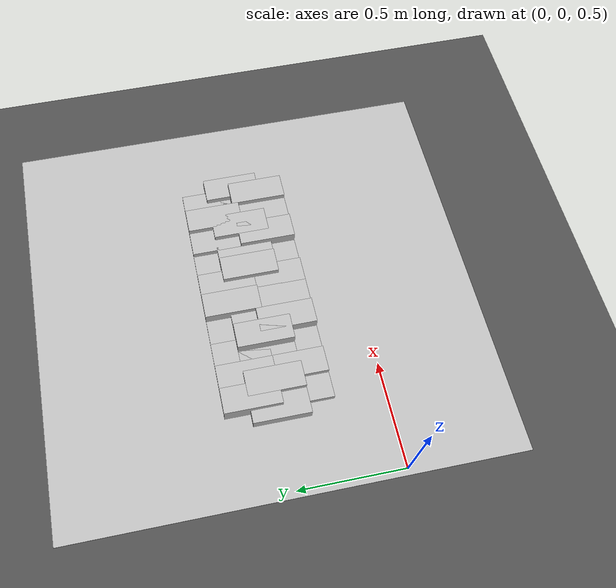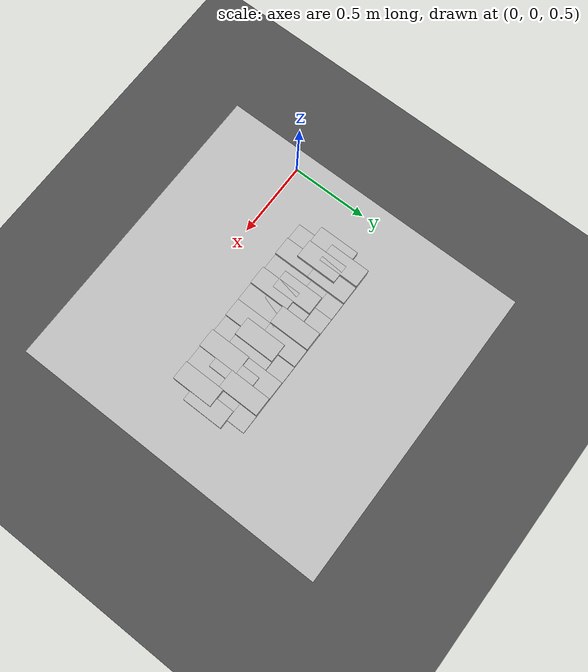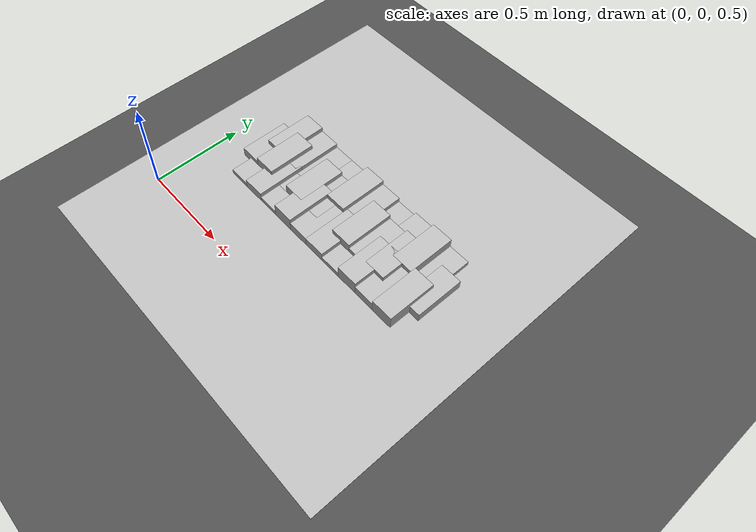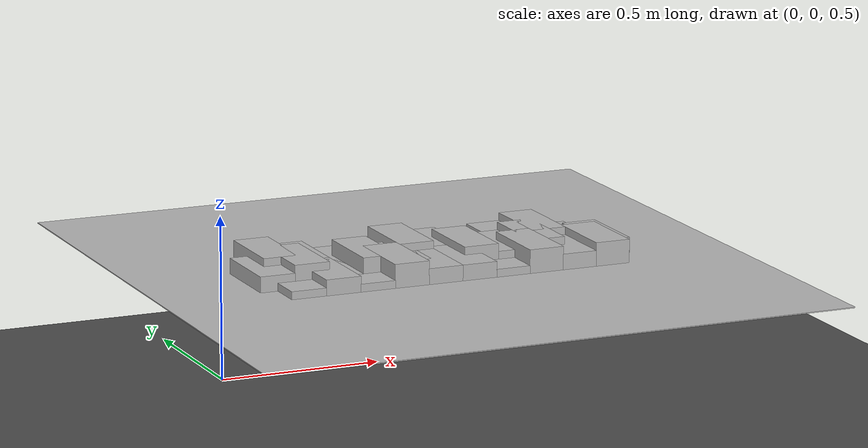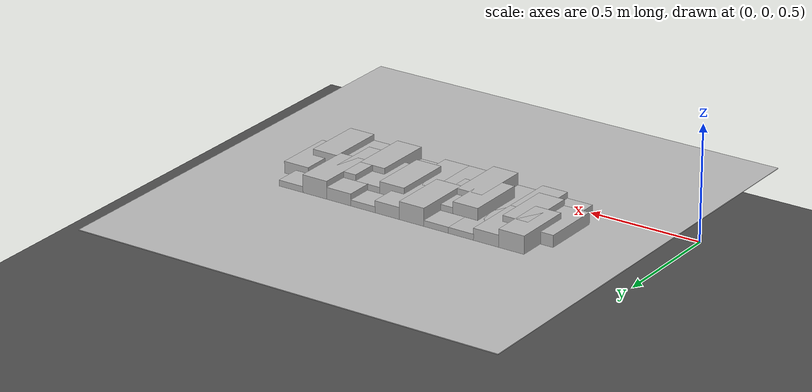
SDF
<sdf version="1.6">
 <world name="default">
  <model name="ground_plane">
   <static>1</static>
   <link name="link">
    <collision name="collision">
     <geometry><plane><normal>0 0 1</normal><size>100 100</size></plane></geometry>
     <surface><friction><ode><mu>100</mu><mu2>50</mu2></ode></friction></surface>
    </collision>
    <visual name="visual">
     <cast_shadows>0</cast_shadows>
     <geometry><plane><normal>0 0 1</normal><size>100 100</size></plane></geometry>
     <material>
      <script><uri>file://media/materials/scripts/gazebo.material</uri><name>Gazebo/Grey</name></script>
     </material>
    </visual>
   </link>
  </model>
  <model name="frc2016_roughterrain_0">
   <link name="link_clone_15">
    <pose>1.00321 0.4785 -0.073164 0 -0 0</pose>
    <inertial>
     <inertia><ixx>nan</ixx><ixy>0</ixy><ixz>0</ixz><iyy>nan</iyy><iyz>0</iyz><izz>nan</izz></inertia>
     <mass>0</mass>
    </inertial>
    <visual name="row1_block4_sm">
     <pose>0.17145 0.1143 0.09698 0 -0 0</pose>
     <geometry><box><size>0.115452 0.257474 0.0254</size></box></geometry>
     <material><shader type="pixel"/></material>
    </visual>
    <visual name="row1_block2_lg">
     <pose>0.40005 0.1143 0.12238 0 -0 0</pose>
     <geometry><box><size>0.115452 0.257474 0.0762</size></box></geometry>
     <material><shader type="pixel"/></material>
    </visual>
    <visual name="row1_block3_md">
     <pose>0.28575 0.1143 0.10968 0 -0 0</pose>
     <geometry><box><size>0.115452 0.257474 0.0508</size></box></geometry>
     <material><shader type="pixel"/></material>
    </visual>
    <visual name="row1_block5_md">
     <pose>0.05715 0.1143 0.10968 0 -0 0</pose>
     <geometry><box><size>0.115452 0.257474 0.0508</size></box></geometry>
     <material><shader type="pixel"/></material>
    </visual>
    <visual name="platform">
     <pose>0 0 0.08269 0 -0 0</pose>
     <geometry><box><size>1.91826 2.01688 0.003175</size></box></geometry>
     <material><shader type="pixel"/></material>
    </visual>
    <visual name="row1_block1_sm">
     <pose>0.51435 0.1143 0.09698 0 -0 0</pose>
     <geometry><box><size>0.115452 0.257474 0.0254</size></box></geometry>
     <material><shader type="pixel"/></material>
    </visual>
    <visual name="row1_block6_lg">
     <pose>-0.05715 0.1143 0.12238 0 -0 0</pose>
     <geometry><box><size>0.115452 0.257474 0.0762</size></box></geometry>
     <material><shader type="pixel"/></material>
    </visual>
    <visual name="row1_block7_sm">
     <pose>-0.17145 0.1143 0.09698 0 -0 0</pose>
     <geometry><box><size>0.115452 0.257474 0.0254</size></box></geometry>
     <material><shader type="pixel"/></material>
    </visual>
    <visual name="row1_block8_sm">
     <pose>-0.28575 0.1143 0.09698 0 -0 0</pose>
     <geometry><box><size>0.115452 0.257474 0.0254</size></box></geometry>
     <material><shader type="pixel"/></material>
    </visual>
    <visual name="row1_block9_md">
     <pose>-0.40005 0.1143 0.10968 0 -0 0</pose>
     <geometry><box><size>0.115452 0.257474 0.0508</size></box></geometry>
     <material><shader type="pixel"/></material>
    </visual>
    <visual name="row1_block10_lg">
     <pose>-0.51435 0.1143 0.12238 0 -0 0</pose>
     <geometry><box><size>0.115452 0.257474 0.0762</size></box></geometry>
     <material><shader type="pixel"/></material>
    </visual>
    <visual name="row2_block1_md">
     <pose>0.5715 0 0.10968 0 -0 0</pose>
     <geometry><box><size>0.115452 0.257474 0.0508</size></box></geometry>
     <material><shader type="pixel"/></material>
    </visual>
    <visual name="row2_block2_sm">
     <pose>0.4572 0 0.09698 0 -0 0</pose>
     <geometry><box><size>0.115452 0.257474 0.0254</size></box></geometry>
     <material><shader type="pixel"/></material>
    </visual>
    <visual name="row2_block3_lg">
     <pose>0.3429 0 0.12238 0 -0 0</pose>
     <geometry><box><size>0.115452 0.257474 0.0762</size></box></geometry>
     <material><shader type="pixel"/></material>
    </visual>
    <visual name="row2_block4_md">
     <pose>0.2286 0 0.10968 0 -0 0</pose>
     <geometry><box><size>0.115452 0.257474 0.0508</size></box></geometry>
     <material><shader type="pixel"/></material>
    </visual>
    <visual name="row2_block5_lg">
     <pose>0.1143 0 0.12238 0 -0 0</pose>
     <geometry><box><size>0.115452 0.257474 0.0762</size></box></geometry>
     <material><shader type="pixel"/></material>
    </visual>
    <visual name="row2_block6_sm">
     <pose>0 0 0.09698 0 -0 0</pose>
     <geometry><box><size>0.115452 0.257474 0.0254</size></box></geometry>
     <material><shader type="pixel"/></material>
    </visual>
    <visual name="row2_block7_md">
     <pose>-0.1143 0 0.10968 0 -0 0</pose>
     <geometry><box><size>0.115452 0.257474 0.0508</size></box></geometry>
     <material><shader type="pixel"/></material>
    </visual>
    <visual name="row2_block8_lg">
     <pose>-0.2286 0 0.12238 0 -0 0</pose>
     <geometry><box><size>0.115452 0.257474 0.0762</size></box></geometry>
     <material><shader type="pixel"/></material>
    </visual>
    <visual name="row2_block9_sm">
     <pose>-0.3429 0 0.09698 0 -0 0</pose>
     <geometry><box><size>0.115452 0.257474 0.0254</size></box></geometry>
     <material><shader type="pixel"/></material>
    </visual>
    <visual name="row2_block10_lg">
     <pose>-0.4572 0 0.12238 0 -0 0</pose>
     <geometry><box><size>0.115452 0.257474 0.0762</size></box></geometry>
     <material><shader type="pixel"/></material>
    </visual>
    <visual name="row2_block11_md">
     <pose>-0.5715 0 0.10968 0 -0 0</pose>
     <geometry><box><size>0.115452 0.257474 0.0508</size></box></geometry>
     <material><shader type="pixel"/></material>
    </visual>
    <visual name="row3_block2_md">
     <pose>0.40005 -0.1143 0.10968 0 -0 0</pose>
     <geometry><box><size>0.115452 0.257474 0.0508</size></box></geometry>
     <material><shader type="pixel"/></material>
    </visual>
    <visual name="row3_block1_lg">
     <pose>0.51435 -0.1143 0.12238 0 -0 0</pose>
     <geometry><box><size>0.115452 0.257474 0.0762</size></box></geometry>
     <material><shader type="pixel"/></material>
    </visual>
    <visual name="row3_block3_lg">
     <pose>0.28575 -0.1143 0.12238 0 -0 0</pose>
     <geometry><box><size>0.115452 0.257474 0.0762</size></box></geometry>
     <material><shader type="pixel"/></material>
    </visual>
    <visual name="row3_block4_sm">
     <pose>0.17145 -0.1143 0.09698 0 -0 0</pose>
     <geometry><box><size>0.115452 0.257474 0.0254</size></box></geometry>
     <material><shader type="pixel"/></material>
    </visual>
    <visual name="row3_block5_md">
     <pose>0.05715 -0.1143 0.10968 0 -0 0</pose>
     <geometry><box><size>0.115452 0.257474 0.0508</size></box></geometry>
     <material><shader type="pixel"/></material>
    </visual>
    <visual name="row3_block6_md">
     <pose>-0.05715 -0.1143 0.10968 0 -0 0</pose>
     <geometry><box><size>0.115452 0.257474 0.0508</size></box></geometry>
     <material><shader type="pixel"/></material>
    </visual>
    <visual name="row3_block8_sm">
     <pose>-0.28575 -0.1143 0.09698 0 -0 0</pose>
     <geometry><box><size>0.115452 0.257474 0.0254</size></box></geometry>
     <material><shader type="pixel"/></material>
    </visual>
    <visual name="row3_block7_lg">
     <pose>-0.17145 -0.1143 0.12238 0 -0 0</pose>
     <geometry><box><size>0.115452 0.257474 0.0762</size></box></geometry>
     <material><shader type="pixel"/></material>
    </visual>
    <visual name="row3_block9_md">
     <pose>-0.40005 -0.1143 0.10968 0 -0 0</pose>
     <geometry><box><size>0.115452 0.257474 0.0508</size></box></geometry>
     <material><shader type="pixel"/></material>
    </visual>
    <visual name="row3_block10_sm">
     <pose>-0.51435 -0.1143 0.09698 0 -0 0</pose>
     <geometry><box><size>0.115452 0.257474 0.0254</size></box></geometry>
     <material><shader type="pixel"/></material>
    </visual>
    <collision name="row2_block5_lg_0">
     <pose>0.1143 0 0.12238 0 -0 0</pose>
     <geometry><box><size>0.115452 0.257474 0.0762</size></box></geometry>
     <surface>
      <friction>
       <ode><mu>1</mu><mu2>1</mu2><fdir1>0 0 0</fdir1><slip1>0</slip1><slip2>0</slip2></ode>
       <torsional>
        <coefficient>1</coefficient>
        <patch_radius>0</patch_radius>
        <surface_radius>0</surface_radius>
        <use_patch_radius>1</use_patch_radius>
        <ode><slip>0</slip></ode>
       </torsional>
      </friction>
      <bounce><restitution_coefficient>0</restitution_coefficient><threshold>1e+06</threshold></bounce>
      <contact>
       <collide_without_contact>0</collide_without_contact>
       <collide_without_contact_bitmask>1</collide_without_contact_bitmask>
       <collide_bitmask>1</collide_bitmask>
       <ode>
        <soft_cfm>0</soft_cfm>
        <soft_erp>0.2</soft_erp>
        <kp>1e+13</kp>
        <kd>1</kd>
        <max_vel>0.01</max_vel>
        <min_depth>0</min_depth>
       </ode>
       <bullet>
        <split_impulse>1</split_impulse>
        <split_impulse_penetration_threshold>-0.01</split_impulse_penetration_threshold>
        <soft_cfm>0</soft_cfm>
        <soft_erp>0.2</soft_erp>
        <kp>1e+13</kp>
        <kd>1</kd>
       </bullet>
      </contact>
     </surface>
    </collision>
    <collision name="platform_0">
     <pose>0 0 0.08269 0 -0 0</pose>
     <geometry><box><size>1.91826 2.01688 0.003175</size></box></geometry>
     <surface>
      <friction>
       <ode><mu>1</mu><mu2>1</mu2><fdir1>0 0 0</fdir1><slip1>0</slip1><slip2>0</slip2></ode>
       <torsional>
        <coefficient>1</coefficient>
        <patch_radius>0</patch_radius>
        <surface_radius>0</surface_radius>
        <use_patch_radius>1</use_patch_radius>
        <ode><slip>0</slip></ode>
       </torsional>
      </friction>
      <bounce><restitution_coefficient>0</restitution_coefficient><threshold>1e+06</threshold></bounce>
      <contact>
       <collide_without_contact>0</collide_without_contact>
       <collide_without_contact_bitmask>1</collide_without_contact_bitmask>
       <collide_bitmask>1</collide_bitmask>
       <ode>
        <soft_cfm>0</soft_cfm>
        <soft_erp>0.2</soft_erp>
        <kp>1e+13</kp>
        <kd>1</kd>
        <max_vel>0.01</max_vel>
        <min_depth>0</min_depth>
       </ode>
       <bullet>
        <split_impulse>1</split_impulse>
        <split_impulse_penetration_threshold>-0.01</split_impulse_penetration_threshold>
        <soft_cfm>0</soft_cfm>
        <soft_erp>0.2</soft_erp>
        <kp>1e+13</kp>
        <kd>1</kd>
       </bullet>
      </contact>
     </surface>
    </collision>
    <collision name="row1_block1_sm_0">
     <pose>0.51435 0.1143 0.09698 0 -0 0</pose>
     <geometry><box><size>0.115452 0.257474 0.0254</size></box></geometry>
     <surface>
      <friction>
       <ode><mu>1</mu><mu2>1</mu2><fdir1>0 0 0</fdir1><slip1>0</slip1><slip2>0</slip2></ode>
       <torsional>
        <coefficient>1</coefficient>
        <patch_radius>0</patch_radius>
        <surface_radius>0</surface_radius>
        <use_patch_radius>1</use_patch_radius>
        <ode><slip>0</slip></ode>
       </torsional>
      </friction>
      <bounce><restitution_coefficient>0</restitution_coefficient><threshold>1e+06</threshold></bounce>
      <contact>
       <collide_without_contact>0</collide_without_contact>
       <collide_without_contact_bitmask>1</collide_without_contact_bitmask>
       <collide_bitmask>1</collide_bitmask>
       <ode>
        <soft_cfm>0</soft_cfm>
        <soft_erp>0.2</soft_erp>
        <kp>1e+13</kp>
        <kd>1</kd>
        <max_vel>0.01</max_vel>
        <min_depth>0</min_depth>
       </ode>
       <bullet>
        <split_impulse>1</split_impulse>
        <split_impulse_penetration_threshold>-0.01</split_impulse_penetration_threshold>
        <soft_cfm>0</soft_cfm>
        <soft_erp>0.2</soft_erp>
        <kp>1e+13</kp>
        <kd>1</kd>
       </bullet>
      </contact>
     </surface>
    </collision>
    <collision name="row1_block3_md_0">
     <pose>0.28575 0.1143 0.10968 0 -0 0</pose>
     <geometry><box><size>0.115452 0.257474 0.0508</size></box></geometry>
     <surface>
      <friction>
       <ode><mu>1</mu><mu2>1</mu2><fdir1>0 0 0</fdir1><slip1>0</slip1><slip2>0</slip2></ode>
       <torsional>
        <coefficient>1</coefficient>
        <patch_radius>0</patch_radius>
        <surface_radius>0</surface_radius>
        <use_patch_radius>1</use_patch_radius>
        <ode><slip>0</slip></ode>
       </torsional>
      </friction>
      <bounce><restitution_coefficient>0</restitution_coefficient><threshold>1e+06</threshold></bounce>
      <contact>
       <collide_without_contact>0</collide_without_contact>
       <collide_without_contact_bitmask>1</collide_without_contact_bitmask>
       <collide_bitmask>1</collide_bitmask>
       <ode>
        <soft_cfm>0</soft_cfm>
        <soft_erp>0.2</soft_erp>
        <kp>1e+13</kp>
        <kd>1</kd>
        <max_vel>0.01</max_vel>
        <min_depth>0</min_depth>
       </ode>
       <bullet>
        <split_impulse>1</split_impulse>
        <split_impulse_penetration_threshold>-0.01</split_impulse_penetration_threshold>
        <soft_cfm>0</soft_cfm>
        <soft_erp>0.2</soft_erp>
        <kp>1e+13</kp>
        <kd>1</kd>
       </bullet>
      </contact>
     </surface>
    </collision>
    <collision name="row1_block5_md_0">
     <pose>0.05715 0.1143 0.10968 0 -0 0</pose>
     <geometry><box><size>0.115452 0.257474 0.0508</size></box></geometry>
     <surface>
      <friction>
       <ode><mu>1</mu><mu2>1</mu2><fdir1>0 0 0</fdir1><slip1>0</slip1><slip2>0</slip2></ode>
       <torsional>
        <coefficient>1</coefficient>
        <patch_radius>0</patch_radius>
        <surface_radius>0</surface_radius>
        <use_patch_radius>1</use_patch_radius>
        <ode><slip>0</slip></ode>
       </torsional>
      </friction>
      <bounce><restitution_coefficient>0</restitution_coefficient><threshold>1e+06</threshold></bounce>
      <contact>
       <collide_without_contact>0</collide_without_contact>
       <collide_without_contact_bitmask>1</collide_without_contact_bitmask>
       <collide_bitmask>1</collide_bitmask>
       <ode>
        <soft_cfm>0</soft_cfm>
        <soft_erp>0.2</soft_erp>
        <kp>1e+13</kp>
        <kd>1</kd>
        <max_vel>0.01</max_vel>
        <min_depth>0</min_depth>
       </ode>
       <bullet>
        <split_impulse>1</split_impulse>
        <split_impulse_penetration_threshold>-0.01</split_impulse_penetration_threshold>
        <soft_cfm>0</soft_cfm>
        <soft_erp>0.2</soft_erp>
        <kp>1e+13</kp>
        <kd>1</kd>
       </bullet>
      </contact>
     </surface>
    </collision>
    <collision name="row1_block2_lg_0">
     <pose>0.40005 0.1143 0.12238 0 -0 0</pose>
     <geometry><box><size>0.115452 0.257474 0.0762</size></box></geometry>
     <surface>
      <friction>
       <ode><mu>1</mu><mu2>1</mu2><fdir1>0 0 0</fdir1><slip1>0</slip1><slip2>0</slip2></ode>
       <torsional>
        <coefficient>1</coefficient>
        <patch_radius>0</patch_radius>
        <surface_radius>0</surface_radius>
        <use_patch_radius>1</use_patch_radius>
        <ode><slip>0</slip></ode>
       </torsional>
      </friction>
      <bounce><restitution_coefficient>0</restitution_coefficient><threshold>1e+06</threshold></bounce>
      <contact>
       <collide_without_contact>0</collide_without_contact>
       <collide_without_contact_bitmask>1</collide_without_contact_bitmask>
       <collide_bitmask>1</collide_bitmask>
       <ode>
        <soft_cfm>0</soft_cfm>
        <soft_erp>0.2</soft_erp>
        <kp>1e+13</kp>
        <kd>1</kd>
        <max_vel>0.01</max_vel>
        <min_depth>0</min_depth>
       </ode>
       <bullet>
        <split_impulse>1</split_impulse>
        <split_impulse_penetration_threshold>-0.01</split_impulse_penetration_threshold>
        <soft_cfm>0</soft_cfm>
        <soft_erp>0.2</soft_erp>
        <kp>1e+13</kp>
        <kd>1</kd>
       </bullet>
      </contact>
     </surface>
    </collision>
    <collision name="row1_block4_sm_0">
     <pose>0.17145 0.1143 0.09698 0 -0 0</pose>
     <geometry><box><size>0.115452 0.257474 0.0254</size></box></geometry>
     <surface>
      <friction>
       <ode><mu>1</mu><mu2>1</mu2><fdir1>0 0 0</fdir1><slip1>0</slip1><slip2>0</slip2></ode>
       <torsional>
        <coefficient>1</coefficient>
        <patch_radius>0</patch_radius>
        <surface_radius>0</surface_radius>
        <use_patch_radius>1</use_patch_radius>
        <ode><slip>0</slip></ode>
       </torsional>
      </friction>
      <bounce><restitution_coefficient>0</restitution_coefficient><threshold>1e+06</threshold></bounce>
      <contact>
       <collide_without_contact>0</collide_without_contact>
       <collide_without_contact_bitmask>1</collide_without_contact_bitmask>
       <collide_bitmask>1</collide_bitmask>
       <ode>
        <soft_cfm>0</soft_cfm>
        <soft_erp>0.2</soft_erp>
        <kp>1e+13</kp>
        <kd>1</kd>
        <max_vel>0.01</max_vel>
        <min_depth>0</min_depth>
       </ode>
       <bullet>
        <split_impulse>1</split_impulse>
        <split_impulse_penetration_threshold>-0.01</split_impulse_penetration_threshold>
        <soft_cfm>0</soft_cfm>
        <soft_erp>0.2</soft_erp>
        <kp>1e+13</kp>
        <kd>1</kd>
       </bullet>
      </contact>
     </surface>
    </collision>
    <collision name="row1_block8_sm_0">
     <pose>-0.28575 0.1143 0.09698 0 -0 0</pose>
     <geometry><box><size>0.115452 0.257474 0.0254</size></box></geometry>
     <surface>
      <friction>
       <ode><mu>1</mu><mu2>1</mu2><fdir1>0 0 0</fdir1><slip1>0</slip1><slip2>0</slip2></ode>
       <torsional>
        <coefficient>1</coefficient>
        <patch_radius>0</patch_radius>
        <surface_radius>0</surface_radius>
        <use_patch_radius>1</use_patch_radius>
        <ode><slip>0</slip></ode>
       </torsional>
      </friction>
      <bounce><restitution_coefficient>0</restitution_coefficient><threshold>1e+06</threshold></bounce>
      <contact>
       <collide_without_contact>0</collide_without_contact>
       <collide_without_contact_bitmask>1</collide_without_contact_bitmask>
       <collide_bitmask>1</collide_bitmask>
       <ode>
        <soft_cfm>0</soft_cfm>
        <soft_erp>0.2</soft_erp>
        <kp>1e+13</kp>
        <kd>1</kd>
        <max_vel>0.01</max_vel>
        <min_depth>0</min_depth>
       </ode>
       <bullet>
        <split_impulse>1</split_impulse>
        <split_impulse_penetration_threshold>-0.01</split_impulse_penetration_threshold>
        <soft_cfm>0</soft_cfm>
        <soft_erp>0.2</soft_erp>
        <kp>1e+13</kp>
        <kd>1</kd>
       </bullet>
      </contact>
     </surface>
    </collision>
    <collision name="row1_block6_lg_0">
     <pose>-0.05715 0.1143 0.12238 0 -0 0</pose>
     <geometry><box><size>0.115452 0.257474 0.0762</size></box></geometry>
     <surface>
      <friction>
       <ode><mu>1</mu><mu2>1</mu2><fdir1>0 0 0</fdir1><slip1>0</slip1><slip2>0</slip2></ode>
       <torsional>
        <coefficient>1</coefficient>
        <patch_radius>0</patch_radius>
        <surface_radius>0</surface_radius>
        <use_patch_radius>1</use_patch_radius>
        <ode><slip>0</slip></ode>
       </torsional>
      </friction>
      <bounce><restitution_coefficient>0</restitution_coefficient><threshold>1e+06</threshold></bounce>
      <contact>
       <collide_without_contact>0</collide_without_contact>
       <collide_without_contact_bitmask>1</collide_without_contact_bitmask>
       <collide_bitmask>1</collide_bitmask>
       <ode>
        <soft_cfm>0</soft_cfm>
        <soft_erp>0.2</soft_erp>
        <kp>1e+13</kp>
        <kd>1</kd>
        <max_vel>0.01</max_vel>
        <min_depth>0</min_depth>
       </ode>
       <bullet>
        <split_impulse>1</split_impulse>
        <split_impulse_penetration_threshold>-0.01</split_impulse_penetration_threshold>
        <soft_cfm>0</soft_cfm>
        <soft_erp>0.2</soft_erp>
        <kp>1e+13</kp>
        <kd>1</kd>
       </bullet>
      </contact>
     </surface>
    </collision>
    <collision name="row1_block7_sm_0">
     <pose>-0.17145 0.1143 0.09698 0 -0 0</pose>
     <geometry><box><size>0.115452 0.257474 0.0254</size></box></geometry>
     <surface>
      <friction>
       <ode><mu>1</mu><mu2>1</mu2><fdir1>0 0 0</fdir1><slip1>0</slip1><slip2>0</slip2></ode>
       <torsional>
        <coefficient>1</coefficient>
        <patch_radius>0</patch_radius>
        <surface_radius>0</surface_radius>
        <use_patch_radius>1</use_patch_radius>
        <ode><slip>0</slip></ode>
       </torsional>
      </friction>
      <bounce><restitution_coefficient>0</restitution_coefficient><threshold>1e+06</threshold></bounce>
      <contact>
       <collide_without_contact>0</collide_without_contact>
       <collide_without_contact_bitmask>1</collide_without_contact_bitmask>
       <collide_bitmask>1</collide_bitmask>
       <ode>
        <soft_cfm>0</soft_cfm>
        <soft_erp>0.2</soft_erp>
        <kp>1e+13</kp>
        <kd>1</kd>
        <max_vel>0.01</max_vel>
        <min_depth>0</min_depth>
       </ode>
       <bullet>
        <split_impulse>1</split_impulse>
        <split_impulse_penetration_threshold>-0.01</split_impulse_penetration_threshold>
        <soft_cfm>0</soft_cfm>
        <soft_erp>0.2</soft_erp>
        <kp>1e+13</kp>
        <kd>1</kd>
       </bullet>
      </contact>
     </surface>
    </collision>
    <collision name="row1_block10_lg_0">
     <pose>-0.51435 0.1143 0.12238 0 -0 0</pose>
     <geometry><box><size>0.115452 0.257474 0.0762</size></box></geometry>
     <surface>
      <friction>
       <ode><mu>1</mu><mu2>1</mu2><fdir1>0 0 0</fdir1><slip1>0</slip1><slip2>0</slip2></ode>
       <torsional>
        <coefficient>1</coefficient>
        <patch_radius>0</patch_radius>
        <surface_radius>0</surface_radius>
        <use_patch_radius>1</use_patch_radius>
        <ode><slip>0</slip></ode>
       </torsional>
      </friction>
      <bounce><restitution_coefficient>0</restitution_coefficient><threshold>1e+06</threshold></bounce>
      <contact>
       <collide_without_contact>0</collide_without_contact>
       <collide_without_contact_bitmask>1</collide_without_contact_bitmask>
       <collide_bitmask>1</collide_bitmask>
       <ode>
        <soft_cfm>0</soft_cfm>
        <soft_erp>0.2</soft_erp>
        <kp>1e+13</kp>
        <kd>1</kd>
        <max_vel>0.01</max_vel>
        <min_depth>0</min_depth>
       </ode>
       <bullet>
        <split_impulse>1</split_impulse>
        <split_impulse_penetration_threshold>-0.01</split_impulse_penetration_threshold>
        <soft_cfm>0</soft_cfm>
        <soft_erp>0.2</soft_erp>
        <kp>1e+13</kp>
        <kd>1</kd>
       </bullet>
      </contact>
     </surface>
    </collision>
    <collision name="row2_block4_md_0">
     <pose>0.2286 0 0.10968 0 -0 0</pose>
     <geometry><box><size>0.115452 0.257474 0.0508</size></box></geometry>
     <surface>
      <friction>
       <ode><mu>1</mu><mu2>1</mu2><fdir1>0 0 0</fdir1><slip1>0</slip1><slip2>0</slip2></ode>
       <torsional>
        <coefficient>1</coefficient>
        <patch_radius>0</patch_radius>
        <surface_radius>0</surface_radius>
        <use_patch_radius>1</use_patch_radius>
        <ode><slip>0</slip></ode>
       </torsional>
      </friction>
      <bounce><restitution_coefficient>0</restitution_coefficient><threshold>1e+06</threshold></bounce>
      <contact>
       <collide_without_contact>0</collide_without_contact>
       <collide_without_contact_bitmask>1</collide_without_contact_bitmask>
       <collide_bitmask>1</collide_bitmask>
       <ode>
        <soft_cfm>0</soft_cfm>
        <soft_erp>0.2</soft_erp>
        <kp>1e+13</kp>
        <kd>1</kd>
        <max_vel>0.01</max_vel>
        <min_depth>0</min_depth>
       </ode>
       <bullet>
        <split_impulse>1</split_impulse>
        <split_impulse_penetration_threshold>-0.01</split_impulse_penetration_threshold>
        <soft_cfm>0</soft_cfm>
        <soft_erp>0.2</soft_erp>
        <kp>1e+13</kp>
        <kd>1</kd>
       </bullet>
      </contact>
     </surface>
    </collision>
    <collision name="row1_block9_md_0">
     <pose>-0.40005 0.1143 0.10968 0 -0 0</pose>
     <geometry><box><size>0.115452 0.257474 0.0508</size></box></geometry>
     <surface>
      <friction>
       <ode><mu>1</mu><mu2>1</mu2><fdir1>0 0 0</fdir1><slip1>0</slip1><slip2>0</slip2></ode>
       <torsional>
        <coefficient>1</coefficient>
        <patch_radius>0</patch_radius>
        <surface_radius>0</surface_radius>
        <use_patch_radius>1</use_patch_radius>
        <ode><slip>0</slip></ode>
       </torsional>
      </friction>
      <bounce><restitution_coefficient>0</restitution_coefficient><threshold>1e+06</threshold></bounce>
      <contact>
       <collide_without_contact>0</collide_without_contact>
       <collide_without_contact_bitmask>1</collide_without_contact_bitmask>
       <collide_bitmask>1</collide_bitmask>
       <ode>
        <soft_cfm>0</soft_cfm>
        <soft_erp>0.2</soft_erp>
        <kp>1e+13</kp>
        <kd>1</kd>
        <max_vel>0.01</max_vel>
        <min_depth>0</min_depth>
       </ode>
       <bullet>
        <split_impulse>1</split_impulse>
        <split_impulse_penetration_threshold>-0.01</split_impulse_penetration_threshold>
        <soft_cfm>0</soft_cfm>
        <soft_erp>0.2</soft_erp>
        <kp>1e+13</kp>
        <kd>1</kd>
       </bullet>
      </contact>
     </surface>
    </collision>
    <collision name="row2_block2_sm_0">
     <pose>0.4572 0 0.09698 0 -0 0</pose>
     <geometry><box><size>0.115452 0.257474 0.0254</size></box></geometry>
     <surface>
      <friction>
       <ode><mu>1</mu><mu2>1</mu2><fdir1>0 0 0</fdir1><slip1>0</slip1><slip2>0</slip2></ode>
       <torsional>
        <coefficient>1</coefficient>
        <patch_radius>0</patch_radius>
        <surface_radius>0</surface_radius>
        <use_patch_radius>1</use_patch_radius>
        <ode><slip>0</slip></ode>
       </torsional>
      </friction>
      <bounce><restitution_coefficient>0</restitution_coefficient><threshold>1e+06</threshold></bounce>
      <contact>
       <collide_without_contact>0</collide_without_contact>
       <collide_without_contact_bitmask>1</collide_without_contact_bitmask>
       <collide_bitmask>1</collide_bitmask>
       <ode>
        <soft_cfm>0</soft_cfm>
        <soft_erp>0.2</soft_erp>
        <kp>1e+13</kp>
        <kd>1</kd>
        <max_vel>0.01</max_vel>
        <min_depth>0</min_depth>
       </ode>
       <bullet>
        <split_impulse>1</split_impulse>
        <split_impulse_penetration_threshold>-0.01</split_impulse_penetration_threshold>
        <soft_cfm>0</soft_cfm>
        <soft_erp>0.2</soft_erp>
        <kp>1e+13</kp>
        <kd>1</kd>
       </bullet>
      </contact>
     </surface>
    </collision>
    <collision name="row2_block1_md_0">
     <pose>0.5715 0 0.10968 0 -0 0</pose>
     <geometry><box><size>0.115452 0.257474 0.0508</size></box></geometry>
     <surface>
      <friction>
       <ode><mu>1</mu><mu2>1</mu2><fdir1>0 0 0</fdir1><slip1>0</slip1><slip2>0</slip2></ode>
       <torsional>
        <coefficient>1</coefficient>
        <patch_radius>0</patch_radius>
        <surface_radius>0</surface_radius>
        <use_patch_radius>1</use_patch_radius>
        <ode><slip>0</slip></ode>
       </torsional>
      </friction>
      <bounce><restitution_coefficient>0</restitution_coefficient><threshold>1e+06</threshold></bounce>
      <contact>
       <collide_without_contact>0</collide_without_contact>
       <collide_without_contact_bitmask>1</collide_without_contact_bitmask>
       <collide_bitmask>1</collide_bitmask>
       <ode>
        <soft_cfm>0</soft_cfm>
        <soft_erp>0.2</soft_erp>
        <kp>1e+13</kp>
        <kd>1</kd>
        <max_vel>0.01</max_vel>
        <min_depth>0</min_depth>
       </ode>
       <bullet>
        <split_impulse>1</split_impulse>
        <split_impulse_penetration_threshold>-0.01</split_impulse_penetration_threshold>
        <soft_cfm>0</soft_cfm>
        <soft_erp>0.2</soft_erp>
        <kp>1e+13</kp>
        <kd>1</kd>
       </bullet>
      </contact>
     </surface>
    </collision>
    <collision name="row2_block7_md_0">
     <pose>-0.1143 0 0.10968 0 -0 0</pose>
     <geometry><box><size>0.115452 0.257474 0.0508</size></box></geometry>
     <surface>
      <friction>
       <ode><mu>1</mu><mu2>1</mu2><fdir1>0 0 0</fdir1><slip1>0</slip1><slip2>0</slip2></ode>
       <torsional>
        <coefficient>1</coefficient>
        <patch_radius>0</patch_radius>
        <surface_radius>0</surface_radius>
        <use_patch_radius>1</use_patch_radius>
        <ode><slip>0</slip></ode>
       </torsional>
      </friction>
      <bounce><restitution_coefficient>0</restitution_coefficient><threshold>1e+06</threshold></bounce>
      <contact>
       <collide_without_contact>0</collide_without_contact>
       <collide_without_contact_bitmask>1</collide_without_contact_bitmask>
       <collide_bitmask>1</collide_bitmask>
       <ode>
        <soft_cfm>0</soft_cfm>
        <soft_erp>0.2</soft_erp>
        <kp>1e+13</kp>
        <kd>1</kd>
        <max_vel>0.01</max_vel>
        <min_depth>0</min_depth>
       </ode>
       <bullet>
        <split_impulse>1</split_impulse>
        <split_impulse_penetration_threshold>-0.01</split_impulse_penetration_threshold>
        <soft_cfm>0</soft_cfm>
        <soft_erp>0.2</soft_erp>
        <kp>1e+13</kp>
        <kd>1</kd>
       </bullet>
      </contact>
     </surface>
    </collision>
    <collision name="row2_block3_lg_0">
     <pose>0.3429 0 0.12238 0 -0 0</pose>
     <geometry><box><size>0.115452 0.257474 0.0762</size></box></geometry>
     <surface>
      <friction>
       <ode><mu>1</mu><mu2>1</mu2><fdir1>0 0 0</fdir1><slip1>0</slip1><slip2>0</slip2></ode>
       <torsional>
        <coefficient>1</coefficient>
        <patch_radius>0</patch_radius>
        <surface_radius>0</surface_radius>
        <use_patch_radius>1</use_patch_radius>
        <ode><slip>0</slip></ode>
       </torsional>
      </friction>
      <bounce><restitution_coefficient>0</restitution_coefficient><threshold>1e+06</threshold></bounce>
      <contact>
       <collide_without_contact>0</collide_without_contact>
       <collide_without_contact_bitmask>1</collide_without_contact_bitmask>
       <collide_bitmask>1</collide_bitmask>
       <ode>
        <soft_cfm>0</soft_cfm>
        <soft_erp>0.2</soft_erp>
        <kp>1e+13</kp>
        <kd>1</kd>
        <max_vel>0.01</max_vel>
        <min_depth>0</min_depth>
       </ode>
       <bullet>
        <split_impulse>1</split_impulse>
        <split_impulse_penetration_threshold>-0.01</split_impulse_penetration_threshold>
        <soft_cfm>0</soft_cfm>
        <soft_erp>0.2</soft_erp>
        <kp>1e+13</kp>
        <kd>1</kd>
       </bullet>
      </contact>
     </surface>
    </collision>
    <collision name="row2_block6_sm_0">
     <pose>0 0 0.09698 0 -0 0</pose>
     <geometry><box><size>0.115452 0.257474 0.0254</size></box></geometry>
     <surface>
      <friction>
       <ode><mu>1</mu><mu2>1</mu2><fdir1>0 0 0</fdir1><slip1>0</slip1><slip2>0</slip2></ode>
       <torsional>
        <coefficient>1</coefficient>
        <patch_radius>0</patch_radius>
        <surface_radius>0</surface_radius>
        <use_patch_radius>1</use_patch_radius>
        <ode><slip>0</slip></ode>
       </torsional>
      </friction>
      <bounce><restitution_coefficient>0</restitution_coefficient><threshold>1e+06</threshold></bounce>
      <contact>
       <collide_without_contact>0</collide_without_contact>
       <collide_without_contact_bitmask>1</collide_without_contact_bitmask>
       <collide_bitmask>1</collide_bitmask>
       <ode>
        <soft_cfm>0</soft_cfm>
        <soft_erp>0.2</soft_erp>
        <kp>1e+13</kp>
        <kd>1</kd>
        <max_vel>0.01</max_vel>
        <min_depth>0</min_depth>
       </ode>
       <bullet>
        <split_impulse>1</split_impulse>
        <split_impulse_penetration_threshold>-0.01</split_impulse_penetration_threshold>
        <soft_cfm>0</soft_cfm>
        <soft_erp>0.2</soft_erp>
        <kp>1e+13</kp>
        <kd>1</kd>
       </bullet>
      </contact>
     </surface>
    </collision>
    <collision name="row2_block10_lg_0">
     <pose>-0.4572 0 0.12238 0 -0 0</pose>
     <geometry><box><size>0.115452 0.257474 0.0762</size></box></geometry>
     <surface>
      <friction>
       <ode><mu>1</mu><mu2>1</mu2><fdir1>0 0 0</fdir1><slip1>0</slip1><slip2>0</slip2></ode>
       <torsional>
        <coefficient>1</coefficient>
        <patch_radius>0</patch_radius>
        <surface_radius>0</surface_radius>
        <use_patch_radius>1</use_patch_radius>
        <ode><slip>0</slip></ode>
       </torsional>
      </friction>
      <bounce><restitution_coefficient>0</restitution_coefficient><threshold>1e+06</threshold></bounce>
      <contact>
       <collide_without_contact>0</collide_without_contact>
       <collide_without_contact_bitmask>1</collide_without_contact_bitmask>
       <collide_bitmask>1</collide_bitmask>
       <ode>
        <soft_cfm>0</soft_cfm>
        <soft_erp>0.2</soft_erp>
        <kp>1e+13</kp>
        <kd>1</kd>
        <max_vel>0.01</max_vel>
        <min_depth>0</min_depth>
       </ode>
       <bullet>
        <split_impulse>1</split_impulse>
        <split_impulse_penetration_threshold>-0.01</split_impulse_penetration_threshold>
        <soft_cfm>0</soft_cfm>
        <soft_erp>0.2</soft_erp>
        <kp>1e+13</kp>
        <kd>1</kd>
       </bullet>
      </contact>
     </surface>
    </collision>
    <collision name="row2_block11_md_0">
     <pose>-0.5715 0 0.10968 0 -0 0</pose>
     <geometry><box><size>0.115452 0.257474 0.0508</size></box></geometry>
     <surface>
      <friction>
       <ode><mu>1</mu><mu2>1</mu2><fdir1>0 0 0</fdir1><slip1>0</slip1><slip2>0</slip2></ode>
       <torsional>
        <coefficient>1</coefficient>
        <patch_radius>0</patch_radius>
        <surface_radius>0</surface_radius>
        <use_patch_radius>1</use_patch_radius>
        <ode><slip>0</slip></ode>
       </torsional>
      </friction>
      <bounce><restitution_coefficient>0</restitution_coefficient><threshold>1e+06</threshold></bounce>
      <contact>
       <collide_without_contact>0</collide_without_contact>
       <collide_without_contact_bitmask>1</collide_without_contact_bitmask>
       <collide_bitmask>1</collide_bitmask>
       <ode>
        <soft_cfm>0</soft_cfm>
        <soft_erp>0.2</soft_erp>
        <kp>1e+13</kp>
        <kd>1</kd>
        <max_vel>0.01</max_vel>
        <min_depth>0</min_depth>
       </ode>
       <bullet>
        <split_impulse>1</split_impulse>
        <split_impulse_penetration_threshold>-0.01</split_impulse_penetration_threshold>
        <soft_cfm>0</soft_cfm>
        <soft_erp>0.2</soft_erp>
        <kp>1e+13</kp>
        <kd>1</kd>
       </bullet>
      </contact>
     </surface>
    </collision>
    <collision name="row2_block8_lg_0">
     <pose>-0.2286 0 0.12238 0 -0 0</pose>
     <geometry><box><size>0.115452 0.257474 0.0762</size></box></geometry>
     <surface>
      <friction>
       <ode><mu>1</mu><mu2>1</mu2><fdir1>0 0 0</fdir1><slip1>0</slip1><slip2>0</slip2></ode>
       <torsional>
        <coefficient>1</coefficient>
        <patch_radius>0</patch_radius>
        <surface_radius>0</surface_radius>
        <use_patch_radius>1</use_patch_radius>
        <ode><slip>0</slip></ode>
       </torsional>
      </friction>
      <bounce><restitution_coefficient>0</restitution_coefficient><threshold>1e+06</threshold></bounce>
      <contact>
       <collide_without_contact>0</collide_without_contact>
       <collide_without_contact_bitmask>1</collide_without_contact_bitmask>
       <collide_bitmask>1</collide_bitmask>
       <ode>
        <soft_cfm>0</soft_cfm>
        <soft_erp>0.2</soft_erp>
        <kp>1e+13</kp>
        <kd>1</kd>
        <max_vel>0.01</max_vel>
        <min_depth>0</min_depth>
       </ode>
       <bullet>
        <split_impulse>1</split_impulse>
        <split_impulse_penetration_threshold>-0.01</split_impulse_penetration_threshold>
        <soft_cfm>0</soft_cfm>
        <soft_erp>0.2</soft_erp>
        <kp>1e+13</kp>
        <kd>1</kd>
       </bullet>
      </contact>
     </surface>
    </collision>
    <collision name="row2_block9_sm_0">
     <pose>-0.3429 0 0.09698 0 -0 0</pose>
     <geometry><box><size>0.115452 0.257474 0.0254</size></box></geometry>
     <surface>
      <friction>
       <ode><mu>1</mu><mu2>1</mu2><fdir1>0 0 0</fdir1><slip1>0</slip1><slip2>0</slip2></ode>
       <torsional>
        <coefficient>1</coefficient>
        <patch_radius>0</patch_radius>
        <surface_radius>0</surface_radius>
        <use_patch_radius>1</use_patch_radius>
        <ode><slip>0</slip></ode>
       </torsional>
      </friction>
      <bounce><restitution_coefficient>0</restitution_coefficient><threshold>1e+06</threshold></bounce>
      <contact>
       <collide_without_contact>0</collide_without_contact>
       <collide_without_contact_bitmask>1</collide_without_contact_bitmask>
       <collide_bitmask>1</collide_bitmask>
       <ode>
        <soft_cfm>0</soft_cfm>
        <soft_erp>0.2</soft_erp>
        <kp>1e+13</kp>
        <kd>1</kd>
        <max_vel>0.01</max_vel>
        <min_depth>0</min_depth>
       </ode>
       <bullet>
        <split_impulse>1</split_impulse>
        <split_impulse_penetration_threshold>-0.01</split_impulse_penetration_threshold>
        <soft_cfm>0</soft_cfm>
        <soft_erp>0.2</soft_erp>
        <kp>1e+13</kp>
        <kd>1</kd>
       </bullet>
      </contact>
     </surface>
    </collision>
    <collision name="row3_block3_lg_0">
     <pose>0.28575 -0.1143 0.12238 0 -0 0</pose>
     <geometry><box><size>0.115452 0.257474 0.0762</size></box></geometry>
     <surface>
      <friction>
       <ode><mu>1</mu><mu2>1</mu2><fdir1>0 0 0</fdir1><slip1>0</slip1><slip2>0</slip2></ode>
       <torsional>
        <coefficient>1</coefficient>
        <patch_radius>0</patch_radius>
        <surface_radius>0</surface_radius>
        <use_patch_radius>1</use_patch_radius>
        <ode><slip>0</slip></ode>
       </torsional>
      </friction>
      <bounce><restitution_coefficient>0</restitution_coefficient><threshold>1e+06</threshold></bounce>
      <contact>
       <collide_without_contact>0</collide_without_contact>
       <collide_without_contact_bitmask>1</collide_without_contact_bitmask>
       <collide_bitmask>1</collide_bitmask>
       <ode>
        <soft_cfm>0</soft_cfm>
        <soft_erp>0.2</soft_erp>
        <kp>1e+13</kp>
        <kd>1</kd>
        <max_vel>0.01</max_vel>
        <min_depth>0</min_depth>
       </ode>
       <bullet>
        <split_impulse>1</split_impulse>
        <split_impulse_penetration_threshold>-0.01</split_impulse_penetration_threshold>
        <soft_cfm>0</soft_cfm>
        <soft_erp>0.2</soft_erp>
        <kp>1e+13</kp>
        <kd>1</kd>
       </bullet>
      </contact>
     </surface>
    </collision>
    <collision name="row3_block2_md_0">
     <pose>0.40005 -0.1143 0.10968 0 -0 0</pose>
     <geometry><box><size>0.115452 0.257474 0.0508</size></box></geometry>
     <surface>
      <friction>
       <ode><mu>1</mu><mu2>1</mu2><fdir1>0 0 0</fdir1><slip1>0</slip1><slip2>0</slip2></ode>
       <torsional>
        <coefficient>1</coefficient>
        <patch_radius>0</patch_radius>
        <surface_radius>0</surface_radius>
        <use_patch_radius>1</use_patch_radius>
        <ode><slip>0</slip></ode>
       </torsional>
      </friction>
      <bounce><restitution_coefficient>0</restitution_coefficient><threshold>1e+06</threshold></bounce>
      <contact>
       <collide_without_contact>0</collide_without_contact>
       <collide_without_contact_bitmask>1</collide_without_contact_bitmask>
       <collide_bitmask>1</collide_bitmask>
       <ode>
        <soft_cfm>0</soft_cfm>
        <soft_erp>0.2</soft_erp>
        <kp>1e+13</kp>
        <kd>1</kd>
        <max_vel>0.01</max_vel>
        <min_depth>0</min_depth>
       </ode>
       <bullet>
        <split_impulse>1</split_impulse>
        <split_impulse_penetration_threshold>-0.01</split_impulse_penetration_threshold>
        <soft_cfm>0</soft_cfm>
        <soft_erp>0.2</soft_erp>
        <kp>1e+13</kp>
        <kd>1</kd>
       </bullet>
      </contact>
     </surface>
    </collision>
    <collision name="row3_block4_sm_0">
     <pose>0.17145 -0.1143 0.09698 0 -0 0</pose>
     <geometry><box><size>0.115452 0.257474 0.0254</size></box></geometry>
     <surface>
      <friction>
       <ode><mu>1</mu><mu2>1</mu2><fdir1>0 0 0</fdir1><slip1>0</slip1><slip2>0</slip2></ode>
       <torsional>
        <coefficient>1</coefficient>
        <patch_radius>0</patch_radius>
        <surface_radius>0</surface_radius>
        <use_patch_radius>1</use_patch_radius>
        <ode><slip>0</slip></ode>
       </torsional>
      </friction>
      <bounce><restitution_coefficient>0</restitution_coefficient><threshold>1e+06</threshold></bounce>
      <contact>
       <collide_without_contact>0</collide_without_contact>
       <collide_without_contact_bitmask>1</collide_without_contact_bitmask>
       <collide_bitmask>1</collide_bitmask>
       <ode>
        <soft_cfm>0</soft_cfm>
        <soft_erp>0.2</soft_erp>
        <kp>1e+13</kp>
        <kd>1</kd>
        <max_vel>0.01</max_vel>
        <min_depth>0</min_depth>
       </ode>
       <bullet>
        <split_impulse>1</split_impulse>
        <split_impulse_penetration_threshold>-0.01</split_impulse_penetration_threshold>
        <soft_cfm>0</soft_cfm>
        <soft_erp>0.2</soft_erp>
        <kp>1e+13</kp>
        <kd>1</kd>
       </bullet>
      </contact>
     </surface>
    </collision>
    <collision name="row3_block1_lg_0">
     <pose>0.51435 -0.1143 0.12238 0 -0 0</pose>
     <geometry><box><size>0.115452 0.257474 0.0762</size></box></geometry>
     <surface>
      <friction>
       <ode><mu>1</mu><mu2>1</mu2><fdir1>0 0 0</fdir1><slip1>0</slip1><slip2>0</slip2></ode>
       <torsional>
        <coefficient>1</coefficient>
        <patch_radius>0</patch_radius>
        <surface_radius>0</surface_radius>
        <use_patch_radius>1</use_patch_radius>
        <ode><slip>0</slip></ode>
       </torsional>
      </friction>
      <bounce><restitution_coefficient>0</restitution_coefficient><threshold>1e+06</threshold></bounce>
      <contact>
       <collide_without_contact>0</collide_without_contact>
       <collide_without_contact_bitmask>1</collide_without_contact_bitmask>
       <collide_bitmask>1</collide_bitmask>
       <ode>
        <soft_cfm>0</soft_cfm>
        <soft_erp>0.2</soft_erp>
        <kp>1e+13</kp>
        <kd>1</kd>
        <max_vel>0.01</max_vel>
        <min_depth>0</min_depth>
       </ode>
       <bullet>
        <split_impulse>1</split_impulse>
        <split_impulse_penetration_threshold>-0.01</split_impulse_penetration_threshold>
        <soft_cfm>0</soft_cfm>
        <soft_erp>0.2</soft_erp>
        <kp>1e+13</kp>
        <kd>1</kd>
       </bullet>
      </contact>
     </surface>
    </collision>
    <collision name="row3_block6_md_0">
     <pose>-0.05715 -0.1143 0.10968 0 -0 0</pose>
     <geometry><box><size>0.115452 0.257474 0.0508</size></box></geometry>
     <surface>
      <friction>
       <ode><mu>1</mu><mu2>1</mu2><fdir1>0 0 0</fdir1><slip1>0</slip1><slip2>0</slip2></ode>
       <torsional>
        <coefficient>1</coefficient>
        <patch_radius>0</patch_radius>
        <surface_radius>0</surface_radius>
        <use_patch_radius>1</use_patch_radius>
        <ode><slip>0</slip></ode>
       </torsional>
      </friction>
      <bounce><restitution_coefficient>0</restitution_coefficient><threshold>1e+06</threshold></bounce>
      <contact>
       <collide_without_contact>0</collide_without_contact>
       <collide_without_contact_bitmask>1</collide_without_contact_bitmask>
       <collide_bitmask>1</collide_bitmask>
       <ode>
        <soft_cfm>0</soft_cfm>
        <soft_erp>0.2</soft_erp>
        <kp>1e+13</kp>
        <kd>1</kd>
        <max_vel>0.01</max_vel>
        <min_depth>0</min_depth>
       </ode>
       <bullet>
        <split_impulse>1</split_impulse>
        <split_impulse_penetration_threshold>-0.01</split_impulse_penetration_threshold>
        <soft_cfm>0</soft_cfm>
        <soft_erp>0.2</soft_erp>
        <kp>1e+13</kp>
        <kd>1</kd>
       </bullet>
      </contact>
     </surface>
    </collision>
    <collision name="row3_block5_md_0">
     <pose>0.05715 -0.1143 0.10968 0 -0 0</pose>
     <geometry><box><size>0.115452 0.257474 0.0508</size></box></geometry>
     <surface>
      <friction>
       <ode><mu>1</mu><mu2>1</mu2><fdir1>0 0 0</fdir1><slip1>0</slip1><slip2>0</slip2></ode>
       <torsional>
        <coefficient>1</coefficient>
        <patch_radius>0</patch_radius>
        <surface_radius>0</surface_radius>
        <use_patch_radius>1</use_patch_radius>
        <ode><slip>0</slip></ode>
       </torsional>
      </friction>
      <bounce><restitution_coefficient>0</restitution_coefficient><threshold>1e+06</threshold></bounce>
      <contact>
       <collide_without_contact>0</collide_without_contact>
       <collide_without_contact_bitmask>1</collide_without_contact_bitmask>
       <collide_bitmask>1</collide_bitmask>
       <ode>
        <soft_cfm>0</soft_cfm>
        <soft_erp>0.2</soft_erp>
        <kp>1e+13</kp>
        <kd>1</kd>
        <max_vel>0.01</max_vel>
        <min_depth>0</min_depth>
       </ode>
       <bullet>
        <split_impulse>1</split_impulse>
        <split_impulse_penetration_threshold>-0.01</split_impulse_penetration_threshold>
        <soft_cfm>0</soft_cfm>
        <soft_erp>0.2</soft_erp>
        <kp>1e+13</kp>
        <kd>1</kd>
       </bullet>
      </contact>
     </surface>
    </collision>
    <collision name="row3_block7_lg_0">
     <pose>-0.17145 -0.1143 0.12238 0 -0 0</pose>
     <geometry><box><size>0.115452 0.257474 0.0762</size></box></geometry>
     <surface>
      <friction>
       <ode><mu>1</mu><mu2>1</mu2><fdir1>0 0 0</fdir1><slip1>0</slip1><slip2>0</slip2></ode>
       <torsional>
        <coefficient>1</coefficient>
        <patch_radius>0</patch_radius>
        <surface_radius>0</surface_radius>
        <use_patch_radius>1</use_patch_radius>
        <ode><slip>0</slip></ode>
       </torsional>
      </friction>
      <bounce><restitution_coefficient>0</restitution_coefficient><threshold>1e+06</threshold></bounce>
      <contact>
       <collide_without_contact>0</collide_without_contact>
       <collide_without_contact_bitmask>1</collide_without_contact_bitmask>
       <collide_bitmask>1</collide_bitmask>
       <ode>
        <soft_cfm>0</soft_cfm>
        <soft_erp>0.2</soft_erp>
        <kp>1e+13</kp>
        <kd>1</kd>
        <max_vel>0.01</max_vel>
        <min_depth>0</min_depth>
       </ode>
       <bullet>
        <split_impulse>1</split_impulse>
        <split_impulse_penetration_threshold>-0.01</split_impulse_penetration_threshold>
        <soft_cfm>0</soft_cfm>
        <soft_erp>0.2</soft_erp>
        <kp>1e+13</kp>
        <kd>1</kd>
       </bullet>
      </contact>
     </surface>
    </collision>
    <collision name="row3_block9_md_0">
     <pose>-0.40005 -0.1143 0.10968 0 -0 0</pose>
     <geometry><box><size>0.115452 0.257474 0.0508</size></box></geometry>
     <surface>
      <friction>
       <ode><mu>1</mu><mu2>1</mu2><fdir1>0 0 0</fdir1><slip1>0</slip1><slip2>0</slip2></ode>
       <torsional>
        <coefficient>1</coefficient>
        <patch_radius>0</patch_radius>
        <surface_radius>0</surface_radius>
        <use_patch_radius>1</use_patch_radius>
        <ode><slip>0</slip></ode>
       </torsional>
      </friction>
      <bounce><restitution_coefficient>0</restitution_coefficient><threshold>1e+06</threshold></bounce>
      <contact>
       <collide_without_contact>0</collide_without_contact>
       <collide_without_contact_bitmask>1</collide_without_contact_bitmask>
       <collide_bitmask>1</collide_bitmask>
       <ode>
        <soft_cfm>0</soft_cfm>
        <soft_erp>0.2</soft_erp>
        <kp>1e+13</kp>
        <kd>1</kd>
        <max_vel>0.01</max_vel>
        <min_depth>0</min_depth>
       </ode>
       <bullet>
        <split_impulse>1</split_impulse>
        <split_impulse_penetration_threshold>-0.01</split_impulse_penetration_threshold>
        <soft_cfm>0</soft_cfm>
        <soft_erp>0.2</soft_erp>
        <kp>1e+13</kp>
        <kd>1</kd>
       </bullet>
      </contact>
     </surface>
    </collision>
    <collision name="row3_block8_sm_0">
     <pose>-0.28575 -0.1143 0.09698 0 -0 0</pose>
     <geometry><box><size>0.115452 0.257474 0.0254</size></box></geometry>
     <surface>
      <friction>
       <ode><mu>1</mu><mu2>1</mu2><fdir1>0 0 0</fdir1><slip1>0</slip1><slip2>0</slip2></ode>
       <torsional>
        <coefficient>1</coefficient>
        <patch_radius>0</patch_radius>
        <surface_radius>0</surface_radius>
        <use_patch_radius>1</use_patch_radius>
        <ode><slip>0</slip></ode>
       </torsional>
      </friction>
      <bounce><restitution_coefficient>0</restitution_coefficient><threshold>1e+06</threshold></bounce>
      <contact>
       <collide_without_contact>0</collide_without_contact>
       <collide_without_contact_bitmask>1</collide_without_contact_bitmask>
       <collide_bitmask>1</collide_bitmask>
       <ode>
        <soft_cfm>0</soft_cfm>
        <soft_erp>0.2</soft_erp>
        <kp>1e+13</kp>
        <kd>1</kd>
        <max_vel>0.01</max_vel>
        <min_depth>0</min_depth>
       </ode>
       <bullet>
        <split_impulse>1</split_impulse>
        <split_impulse_penetration_threshold>-0.01</split_impulse_penetration_threshold>
        <soft_cfm>0</soft_cfm>
        <soft_erp>0.2</soft_erp>
        <kp>1e+13</kp>
        <kd>1</kd>
       </bullet>
      </contact>
     </surface>
    </collision>
    <collision name="row3_block10_sm_0">
     <pose>-0.51435 -0.1143 0.09698 0 -0 0</pose>
     <geometry><box><size>0.115452 0.257474 0.0254</size></box></geometry>
     <surface>
      <friction>
       <ode><mu>1</mu><mu2>1</mu2><fdir1>0 0 0</fdir1><slip1>0</slip1><slip2>0</slip2></ode>
       <torsional>
        <coefficient>1</coefficient>
        <patch_radius>0</patch_radius>
        <surface_radius>0</surface_radius>
        <use_patch_radius>1</use_patch_radius>
        <ode><slip>0</slip></ode>
       </torsional>
      </friction>
      <bounce><restitution_coefficient>0</restitution_coefficient><threshold>1e+06</threshold></bounce>
      <contact>
       <collide_without_contact>0</collide_without_contact>
       <collide_without_contact_bitmask>1</collide_without_contact_bitmask>
       <collide_bitmask>1</collide_bitmask>
       <ode>
        <soft_cfm>0</soft_cfm>
        <soft_erp>0.2</soft_erp>
        <kp>1e+13</kp>
        <kd>1</kd>
        <max_vel>0.01</max_vel>
        <min_depth>0</min_depth>
       </ode>
       <bullet>
        <split_impulse>1</split_impulse>
        <split_impulse_penetration_threshold>-0.01</split_impulse_penetration_threshold>
        <soft_cfm>0</soft_cfm>
        <soft_erp>0.2</soft_erp>
        <kp>1e+13</kp>
        <kd>1</kd>
       </bullet>
      </contact>
     </surface>
    </collision>
   </link>
   <static>1</static>
   <pose>-0.10114 0.027351 0.636987 0 -0 0</pose>
  </model>
  <model name="asphalt_plane">
   <static>1</static>
   <link name="link">
    <collision name="collision"><geometry><box><size>20 20 0.1</size></box></geometry></collision>
    <visual name="visual">
     <cast_shadows>0</cast_shadows>
     <geometry><box><size>20 20 0.1</size></box></geometry>
     <material>
      <script>
       <uri>model://asphalt_plane/materials/scripts</uri>
       <uri>model://asphalt_plane/materials/textures</uri>
       <name>vrc/asphalt</name>
      </script>
     </material>
    </visual>
   </link>
   <pose>0.537328 0.29075 -0.013118 0 -0 0</pose>
  </model>
 </world>
</sdf>
